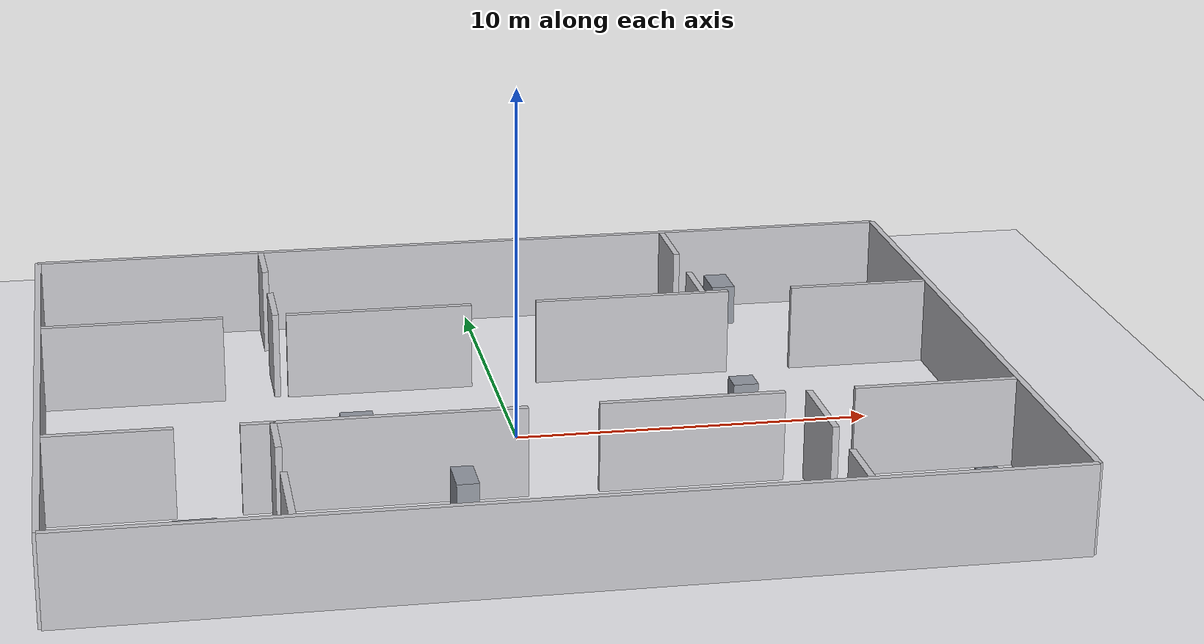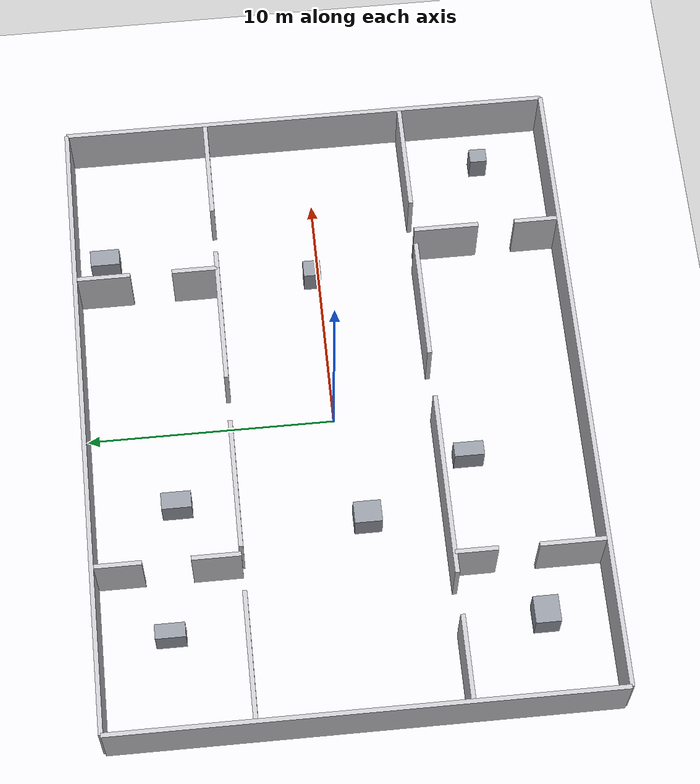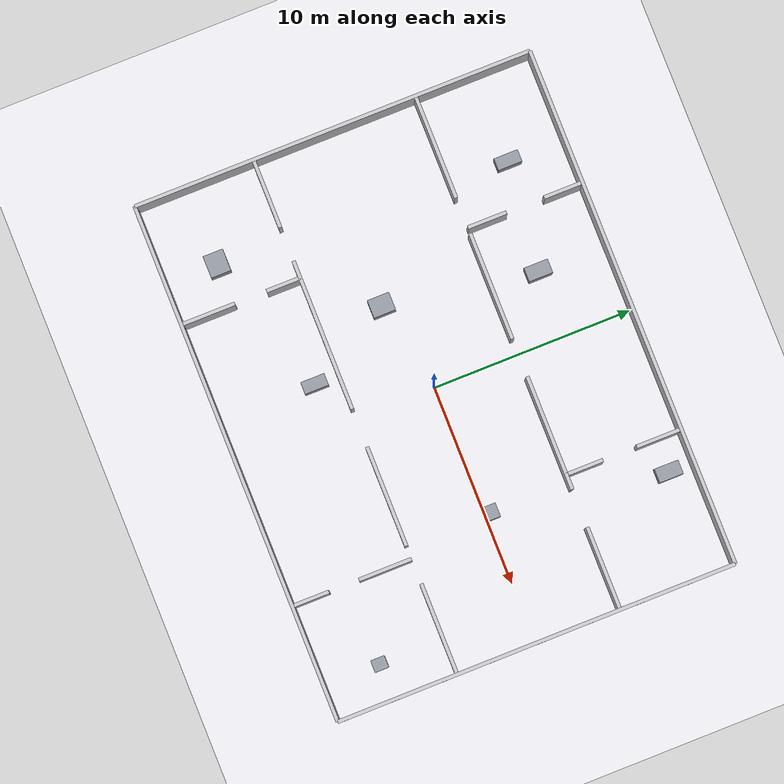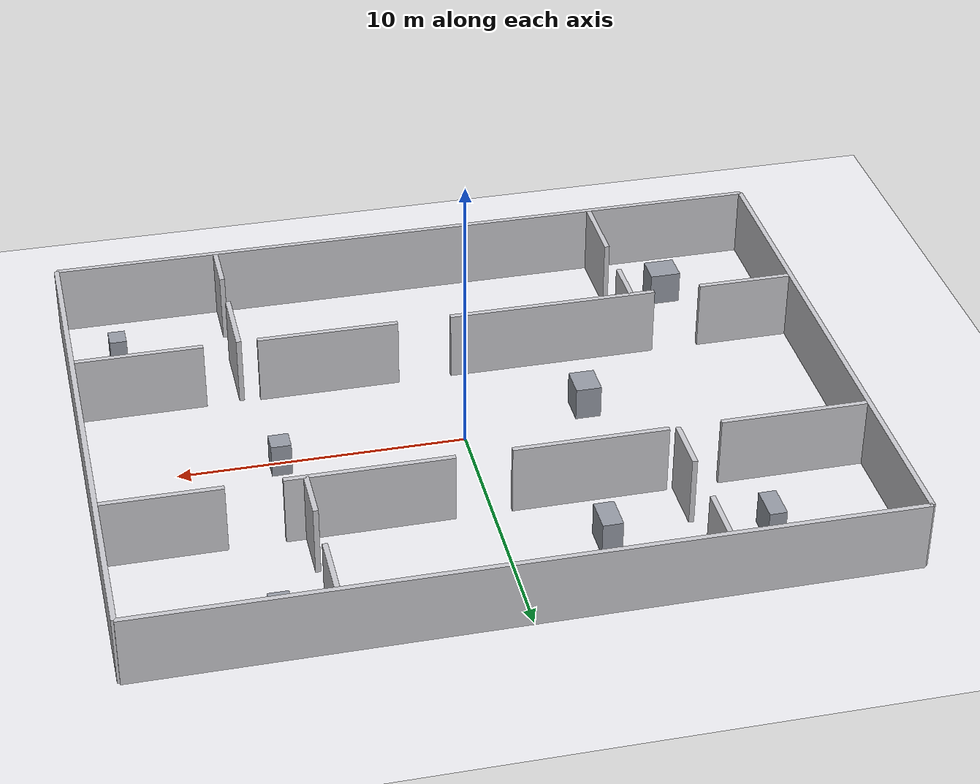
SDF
<?xml version="1.0"?>
<sdf version="1.9"><world name="new_room_world">
<plugin filename="gz-sim-physics-system" name="gz::sim::systems::Physics"/><plugin filename="gz-sim-user-commands-system" name="gz::sim::systems::UserCommands"/><plugin filename="gz-sim-scene-broadcaster-system" name="gz::sim::systems::SceneBroadcaster"/><plugin filename="gz-sim-sensors-system" name="gz::sim::systems::Sensors"><render_engine>ogre2</render_engine></plugin><plugin filename="gz-sim-imu-system" name="gz::sim::systems::Imu"/>
<physics name="new_room_realtime" type="ignored"><max_step_size>0.001</max_step_size><real_time_factor>1</real_time_factor></physics><gravity>0 0 -9.8</gravity><scene><ambient>0.85 0.85 0.87 1</ambient><background>0.68 0.68 0.71 1</background><shadows>false</shadows></scene><light name="sun" type="directional"><cast_shadows>false</cast_shadows><pose>0 0 10 0 0 0</pose><diffuse>0.95 0.95 0.95 1</diffuse><direction>-0.3 0.2 -1</direction></light>
<model name="new_room_ground"><static>true</static><link name="ground_link"><collision name="ground_collision"><geometry><plane><normal>0 0 1</normal><size>40 32</size></plane></geometry></collision><visual name="ground_visual"><geometry><plane><normal>0 0 1</normal><size>40 32</size></plane></geometry><material><ambient>0.92 0.92 0.94 1</ambient><diffuse>0.92 0.92 0.94 1</diffuse></material></visual></link></model>
<model name="mini_hospital_structure"><static>true</static><link name="structure">
<collision name="mx048_c000"><pose>0 10 1.25 0 0 0</pose><geometry><box><size>26 0.18 2.5</size></box></geometry></collision><visual name="mx048_v000"><pose>0 10 1.25 0 0 0</pose><geometry><box><size>26 0.18 2.5</size></box></geometry><material><ambient>0.78 0.78 0.80 1</ambient><diffuse>0.78 0.78 0.80 1</diffuse></material></visual>
<collision name="mx048_c001"><pose>0 -10 1.25 0 0 0</pose><geometry><box><size>26 0.18 2.5</size></box></geometry></collision><visual name="mx048_v001"><pose>0 -10 1.25 0 0 0</pose><geometry><box><size>26 0.18 2.5</size></box></geometry><material><ambient>0.78 0.78 0.80 1</ambient><diffuse>0.78 0.78 0.80 1</diffuse></material></visual>
<collision name="mx048_c002"><pose>-13 0 1.25 0 0 0</pose><geometry><box><size>0.18 20 2.5</size></box></geometry></collision><visual name="mx048_v002"><pose>-13 0 1.25 0 0 0</pose><geometry><box><size>0.18 20 2.5</size></box></geometry><material><ambient>0.78 0.78 0.80 1</ambient><diffuse>0.78 0.78 0.80 1</diffuse></material></visual>
<collision name="mx048_c003"><pose>13 0 1.25 0 0 0</pose><geometry><box><size>0.18 20 2.5</size></box></geometry></collision><visual name="mx048_v003"><pose>13 0 1.25 0 0 0</pose><geometry><box><size>0.18 20 2.5</size></box></geometry><material><ambient>0.78 0.78 0.80 1</ambient><diffuse>0.78 0.78 0.80 1</diffuse></material></visual>
<collision name="mx048_c004"><pose>-10.355 4.2 1.25 0 0 0</pose><geometry><box><size>5.11 0.18 2.5</size></box></geometry></collision><visual name="mx048_v004"><pose>-10.355 4.2 1.25 0 0 0</pose><geometry><box><size>5.11 0.18 2.5</size></box></geometry><material><ambient>0.78 0.78 0.80 1</ambient><diffuse>0.78 0.78 0.80 1</diffuse></material></visual>
<collision name="mx048_c005"><pose>-3.325 4.2 1.25 0 0 0</pose><geometry><box><size>5.35 0.18 2.5</size></box></geometry></collision><visual name="mx048_v005"><pose>-3.325 4.2 1.25 0 0 0</pose><geometry><box><size>5.35 0.18 2.5</size></box></geometry><material><ambient>0.78 0.78 0.80 1</ambient><diffuse>0.78 0.78 0.80 1</diffuse></material></visual>
<collision name="mx048_c006"><pose>4.1 4.2 1.25 0 0 0</pose><geometry><box><size>5.7 0.18 2.5</size></box></geometry></collision><visual name="mx048_v006"><pose>4.1 4.2 1.25 0 0 0</pose><geometry><box><size>5.7 0.18 2.5</size></box></geometry><material><ambient>0.78 0.78 0.80 1</ambient><diffuse>0.78 0.78 0.80 1</diffuse></material></visual>
<collision name="mx048_c007"><pose>10.88 4.2 1.25 0 0 0</pose><geometry><box><size>4.06 0.18 2.5</size></box></geometry></collision><visual name="mx048_v007"><pose>10.88 4.2 1.25 0 0 0</pose><geometry><box><size>4.06 0.18 2.5</size></box></geometry><material><ambient>0.78 0.78 0.80 1</ambient><diffuse>0.78 0.78 0.80 1</diffuse></material></visual>
<collision name="mx048_c008"><pose>-11.23 -4 1.25 0 0 0</pose><geometry><box><size>3.36 0.18 2.5</size></box></geometry></collision><visual name="mx048_v008"><pose>-11.23 -4 1.25 0 0 0</pose><geometry><box><size>3.36 0.18 2.5</size></box></geometry><material><ambient>0.78 0.78 0.80 1</ambient><diffuse>0.78 0.78 0.80 1</diffuse></material></visual>
<collision name="mx048_c009"><pose>-4.1 -4 1.25 0 0 0</pose><geometry><box><size>7.5 0.18 2.5</size></box></geometry></collision><visual name="mx048_v009"><pose>-4.1 -4 1.25 0 0 0</pose><geometry><box><size>7.5 0.18 2.5</size></box></geometry><material><ambient>0.78 0.78 0.80 1</ambient><diffuse>0.78 0.78 0.80 1</diffuse></material></visual>
<collision name="mx048_c010"><pose>4.05 -4 1.25 0 0 0</pose><geometry><box><size>5 0.18 2.5</size></box></geometry></collision><visual name="mx048_v010"><pose>4.05 -4 1.25 0 0 0</pose><geometry><box><size>5 0.18 2.5</size></box></geometry><material><ambient>0.78 0.78 0.80 1</ambient><diffuse>0.78 0.78 0.80 1</diffuse></material></visual>
<collision name="mx048_c011"><pose>10.68 -4 1.25 0 0 0</pose><geometry><box><size>4.46 0.18 2.5</size></box></geometry></collision><visual name="mx048_v011"><pose>10.68 -4 1.25 0 0 0</pose><geometry><box><size>4.46 0.18 2.5</size></box></geometry><material><ambient>0.78 0.78 0.80 1</ambient><diffuse>0.78 0.78 0.80 1</diffuse></material></visual>
<collision name="mx048_c012"><pose>-6.3 5.175 1.25 0 0 0</pose><geometry><box><size>0.18 1.95 2.5</size></box></geometry></collision><visual name="mx048_v012"><pose>-6.3 5.175 1.25 0 0 0</pose><geometry><box><size>0.18 1.95 2.5</size></box></geometry><material><ambient>0.78 0.78 0.80 1</ambient><diffuse>0.78 0.78 0.80 1</diffuse></material></visual>
<collision name="mx048_c013"><pose>-6.3 8.98 1.25 0 0 0</pose><geometry><box><size>0.18 1.86 2.5</size></box></geometry></collision><visual name="mx048_v013"><pose>-6.3 8.98 1.25 0 0 0</pose><geometry><box><size>0.18 1.86 2.5</size></box></geometry><material><ambient>0.78 0.78 0.80 1</ambient><diffuse>0.78 0.78 0.80 1</diffuse></material></visual>
<collision name="mx048_c014"><pose>6.2 5.125 1.25 0 0 0</pose><geometry><box><size>0.18 1.85 2.5</size></box></geometry></collision><visual name="mx048_v014"><pose>6.2 5.125 1.25 0 0 0</pose><geometry><box><size>0.18 1.85 2.5</size></box></geometry><material><ambient>0.78 0.78 0.80 1</ambient><diffuse>0.78 0.78 0.80 1</diffuse></material></visual>
<collision name="mx048_c015"><pose>6.2 8.83 1.25 0 0 0</pose><geometry><box><size>0.18 2.16 2.5</size></box></geometry></collision><visual name="mx048_v015"><pose>6.2 8.83 1.25 0 0 0</pose><geometry><box><size>0.18 2.16 2.5</size></box></geometry><material><ambient>0.78 0.78 0.80 1</ambient><diffuse>0.78 0.78 0.80 1</diffuse></material></visual>
<collision name="mx048_c016"><pose>-7 -8.605 1.25 0 0 0</pose><geometry><box><size>0.18 2.61 2.5</size></box></geometry></collision><visual name="mx048_v016"><pose>-7 -8.605 1.25 0 0 0</pose><geometry><box><size>0.18 2.61 2.5</size></box></geometry><material><ambient>0.78 0.78 0.80 1</ambient><diffuse>0.78 0.78 0.80 1</diffuse></material></visual>
<collision name="mx048_c017"><pose>-7 -4.85 1.25 0 0 0</pose><geometry><box><size>0.18 1.7 2.5</size></box></geometry></collision><visual name="mx048_v017"><pose>-7 -4.85 1.25 0 0 0</pose><geometry><box><size>0.18 1.7 2.5</size></box></geometry><material><ambient>0.78 0.78 0.80 1</ambient><diffuse>0.78 0.78 0.80 1</diffuse></material></visual>
<collision name="mx048_c018"><pose>7.2 -9.03 1.25 0 0 0</pose><geometry><box><size>0.18 1.76 2.5</size></box></geometry></collision><visual name="mx048_v018"><pose>7.2 -9.03 1.25 0 0 0</pose><geometry><box><size>0.18 1.76 2.5</size></box></geometry><material><ambient>0.78 0.78 0.80 1</ambient><diffuse>0.78 0.78 0.80 1</diffuse></material></visual>
<collision name="mx048_c019"><pose>7.2 -5.325 1.25 0 0 0</pose><geometry><box><size>0.18 2.65 2.5</size></box></geometry></collision><visual name="mx048_v019"><pose>7.2 -5.325 1.25 0 0 0</pose><geometry><box><size>0.18 2.65 2.5</size></box></geometry><material><ambient>0.78 0.78 0.80 1</ambient><diffuse>0.78 0.78 0.80 1</diffuse></material></visual>
<collision name="mx048_c020"><pose>-8.7 7.2 0.6 0 0 0</pose><geometry><box><size>0.6 1.2 1.2</size></box></geometry></collision><visual name="mx048_v020"><pose>-8.7 7.2 0.6 0 0 0</pose><geometry><box><size>0.6 1.2 1.2</size></box></geometry><material><ambient>0.58 0.60 0.64 1</ambient><diffuse>0.58 0.60 0.64 1</diffuse></material></visual>
<collision name="mx048_c021"><pose>-3.3 6.6 0.6 0 0 0</pose><geometry><box><size>0.7 1.2 1.2</size></box></geometry></collision><visual name="mx048_v021"><pose>-3.3 6.6 0.6 0 0 0</pose><geometry><box><size>0.7 1.2 1.2</size></box></geometry><material><ambient>0.58 0.60 0.64 1</ambient><diffuse>0.58 0.60 0.64 1</diffuse></material></visual>
<collision name="mx048_c022"><pose>7.8 8.8 0.6 0 0 0</pose><geometry><box><size>0.7 1.2 1.2</size></box></geometry></collision><visual name="mx048_v022"><pose>7.8 8.8 0.6 0 0 0</pose><geometry><box><size>0.7 1.2 1.2</size></box></geometry><material><ambient>0.58 0.60 0.64 1</ambient><diffuse>0.58 0.60 0.64 1</diffuse></material></visual>
<collision name="mx048_c023"><pose>-9.2 -7.4 0.6 0 0 0</pose><geometry><box><size>1.1 1 1.2</size></box></geometry></collision><visual name="mx048_v023"><pose>-9.2 -7.4 0.6 0 0 0</pose><geometry><box><size>1.1 1 1.2</size></box></geometry><material><ambient>0.58 0.60 0.64 1</ambient><diffuse>0.58 0.60 0.64 1</diffuse></material></visual>
<collision name="mx048_c024"><pose>-2.2 -5.2 0.6 0 0 0</pose><geometry><box><size>0.6 1.2 1.2</size></box></geometry></collision><visual name="mx048_v024"><pose>-2.2 -5.2 0.6 0 0 0</pose><geometry><box><size>0.6 1.2 1.2</size></box></geometry><material><ambient>0.58 0.60 0.64 1</ambient><diffuse>0.58 0.60 0.64 1</diffuse></material></visual>
<collision name="mx048_c025"><pose>11.2 -7.2 0.6 0 0 0</pose><geometry><box><size>0.6 0.7 1.2</size></box></geometry></collision><visual name="mx048_v025"><pose>11.2 -7.2 0.6 0 0 0</pose><geometry><box><size>0.6 0.7 1.2</size></box></geometry><material><ambient>0.58 0.60 0.64 1</ambient><diffuse>0.58 0.60 0.64 1</diffuse></material></visual>
<collision name="mx048_c026"><pose>-4.5 -0.9 0.6 0 0 0</pose><geometry><box><size>0.9 1.1 1.2</size></box></geometry></collision><visual name="mx048_v026"><pose>-4.5 -0.9 0.6 0 0 0</pose><geometry><box><size>0.9 1.1 1.2</size></box></geometry><material><ambient>0.58 0.60 0.64 1</ambient><diffuse>0.58 0.60 0.64 1</diffuse></material></visual>
<collision name="mx048_c027"><pose>6.5 0.3 0.6 0 0 0</pose><geometry><box><size>0.7 0.7 1.2</size></box></geometry></collision><visual name="mx048_v027"><pose>6.5 0.3 0.6 0 0 0</pose><geometry><box><size>0.7 0.7 1.2</size></box></geometry><material><ambient>0.58 0.60 0.64 1</ambient><diffuse>0.58 0.60 0.64 1</diffuse></material></visual>
</link></model></world></sdf>
